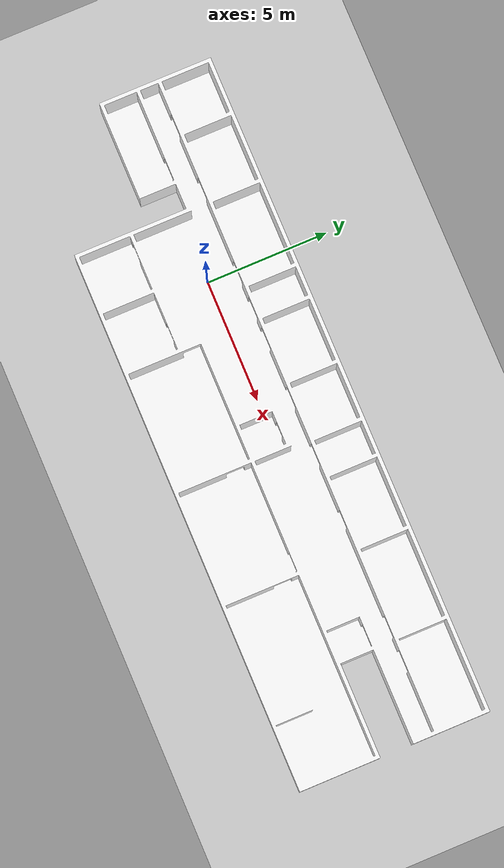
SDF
<?xml version="1.0"?>
<sdf version="1.4">
  <world name="default">
    <include>
      <uri>model://ground_plane</uri>
    </include>
    <include>
      <uri>model://sun</uri>
    </include>
    <model name="my_mesh">
      <pose>0 0 0  0 0 0</pose>
      <static>true</static>
      <link name="body">
	<visual name="visual">
  	<pose>0 0 0 0 0 0</pose>
 	 <geometry>
  	  <mesh><uri>model://lab-b/lab-b.dae</uri></mesh>
  	</geometry>
	</visual>
      </link>
    </model>
  </world>
</sdf>
